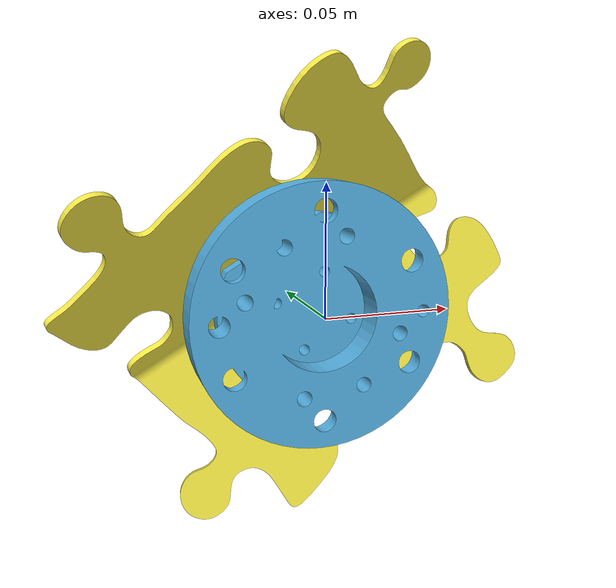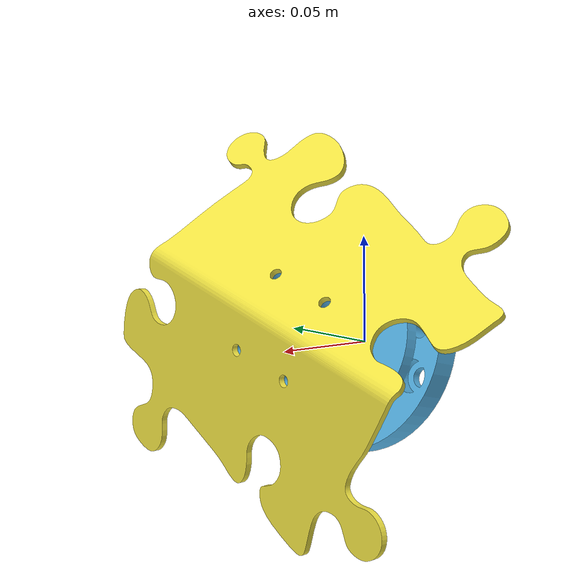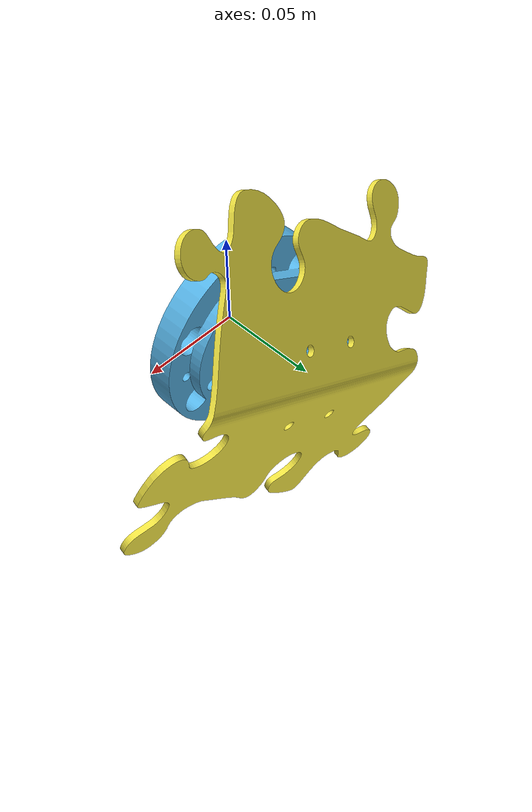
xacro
<?xml version="1.0"?>
<robot xmlns:xacro="http://ros.org/wiki/xacro" name="tool">

  <link name="ee_mount" />

  <!-- link "ee_base" and connected joints-->
  <link name="ee_base" >
    <visual>
      <geometry>
        <mesh filename="package://myworkcell_core/meshes/puzzle_mount.stl" />
      </geometry>>
    </visual>
    <collision>
      <geometry>
        <mesh filename="package://myworkcell_core/meshes/puzzle_mount.stl" />
      </geometry>
    </collision>
  </link>

  <joint name="ee_mount-ee_base" type="fixed" >
    <parent link="ee_mount" />
    <child link="ee_base" />
    <origin xyz="0 0 0" rpy="0 0 0" />
  </joint>

  <!-- tool1 is the point that parts connect to the tool -->
  <link name="tool1" />
  <joint name="ee_base-tool1" type="fixed" >
    <parent link="ee_base" />
    <child link="tool1" />
    <origin xyz="-0.0083 0.0541 0.0143" rpy="0.523599 -0.523599 0" />
  </joint>

  <link name="part" >
    <visual>
      <geometry>
        <mesh filename="package://myworkcell_core/meshes/puzzle_bent.dae" />
      </geometry>
    </visual>
    <collision>
      <geometry>
        <mesh filename="package://myworkcell_core/meshes/puzzle_bent.dae" />
      </geometry>
    </collision>
  </link>

  <joint name="tool1-part" type="fixed" >
    <parent link="tool1" />
    <child link="part" />
    <origin xyz="0.0110 0.0030 -0.0379" rpy="0 -0.2618 0" />
  </joint>

</robot>
